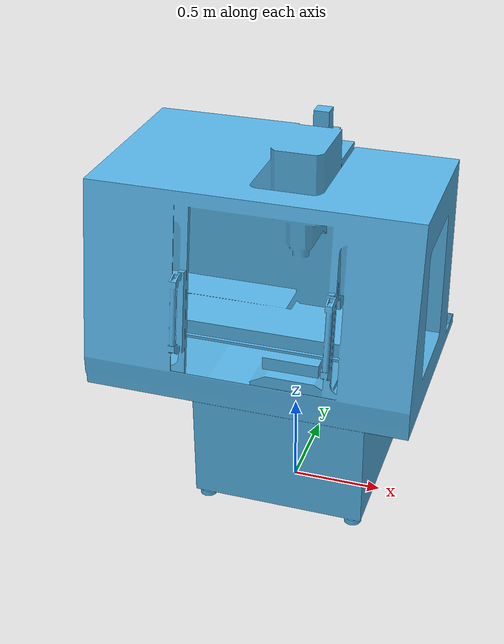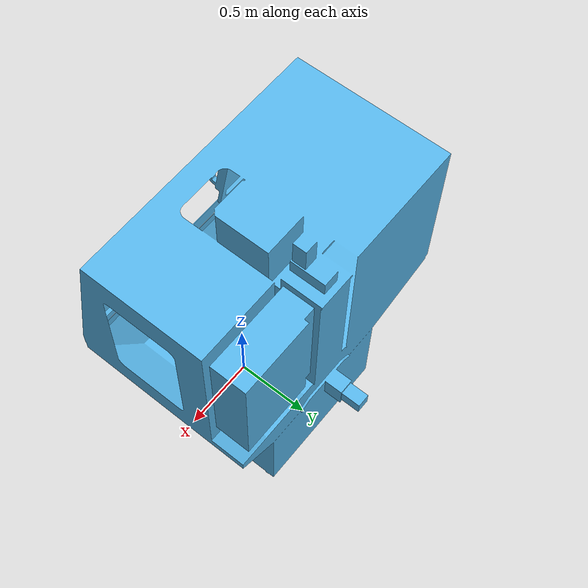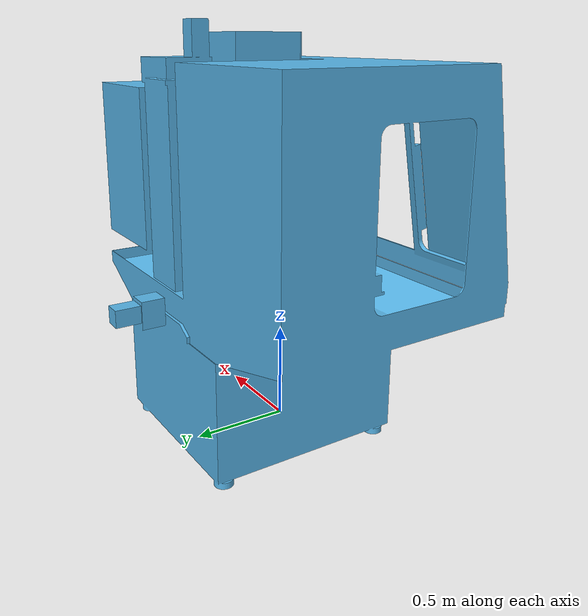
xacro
<?xml version="1.0" ?>
<robot name="pcnc1100" xmlns:xacro="http://www.ros.org/wiki/xacro">
  <xacro:arg name="prefix" default=""/>
  <xacro:include
      filename="$(find za6_tools)/urdf/pcnc1100/pcnc1100_macro.xacro"/>

  <link name="world"/>
  <xacro:pcnc1100
      prefix="$(arg prefix)"
      connected_to="$(arg prefix)world"/>
</robot>

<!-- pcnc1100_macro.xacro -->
<robot xmlns:xacro="http://www.ros.org/wiki/xacro">
  <xacro:macro name="pcnc1100" params="prefix connected_to">
    <!-- Tormach PCNC 1100 -->
    <xacro:property
        name="mesh_path"
        value="file://$(find za6_tools)/meshes/pcnc1100"/>
    <link name="cnc_machine">
      <visual>
        <origin xyz="0 0 0" rpy="0 0 0"/>
        <geometry>
          <mesh filename="${mesh_path}/pcnc1100.dae" scale="1 1 1"/>
        </geometry>
      </visual>
      <collision>
        <origin xyz="0 0 0" rpy="0 0 0"/>
        <geometry>
          <mesh filename="${mesh_path}/pcnc1100-collision.dae" scale="1 1 1"/>
        </geometry>
      </collision>
    </link>

    <joint name="cnc_machine_joint" type="fixed">
      <parent link="${connected_to}"/>
      <child link="cnc_machine"/>
      <origin xyz="0 0 0" rpy="0 0 0"/>
    </joint>
  </xacro:macro>
</robot>
